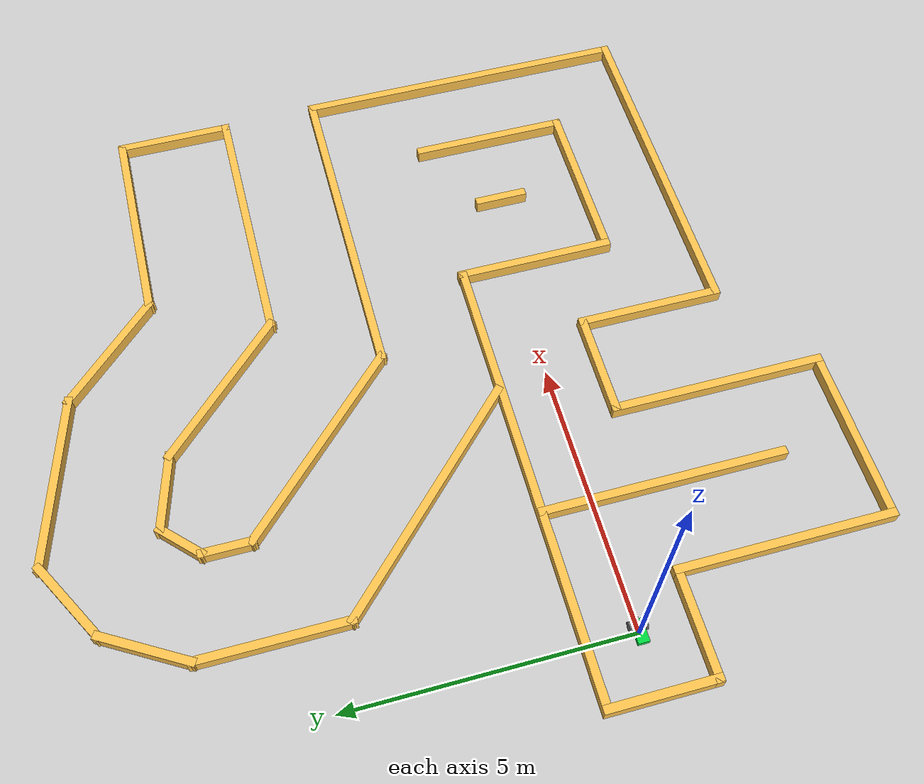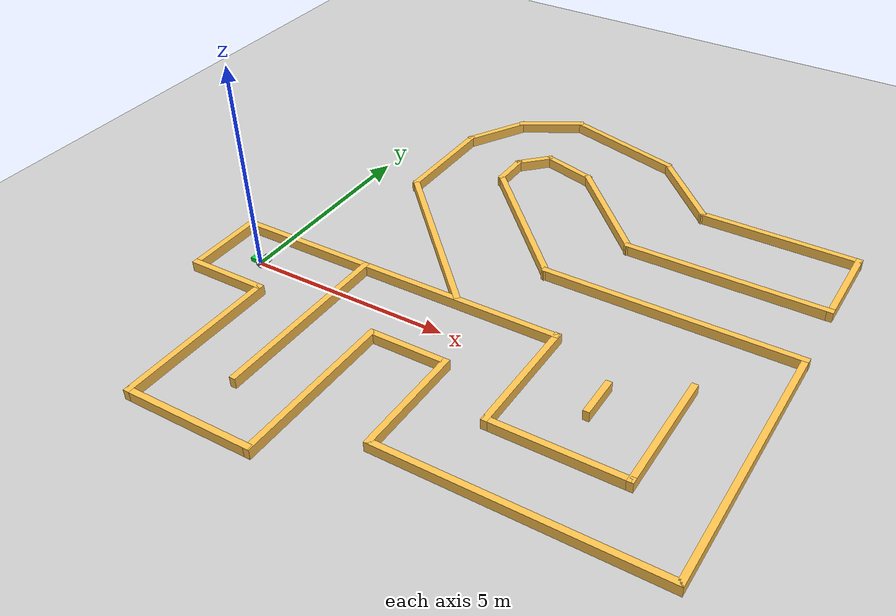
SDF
<?xml version="1.0" ?>
<sdf version="1.5">
  <world name="default">
    <!-- A global light source -->
    <include>
      <uri>model://sun</uri>
    </include>
    <!-- A ground plane -->
    <include>
      <uri>model://ground_plane</uri>
    </include>
    <!-- A ground plane -->
    <include>
      <uri>model://maze</uri>
    </include>
    <include>
      <uri>model://simple_diff</uri>
    </include>
  </world>
</sdf>
